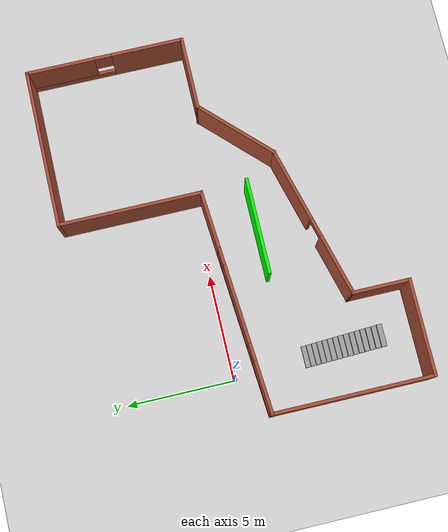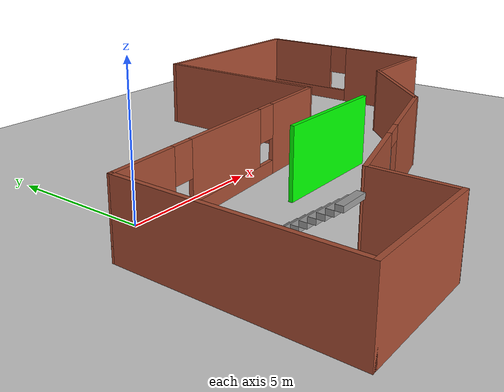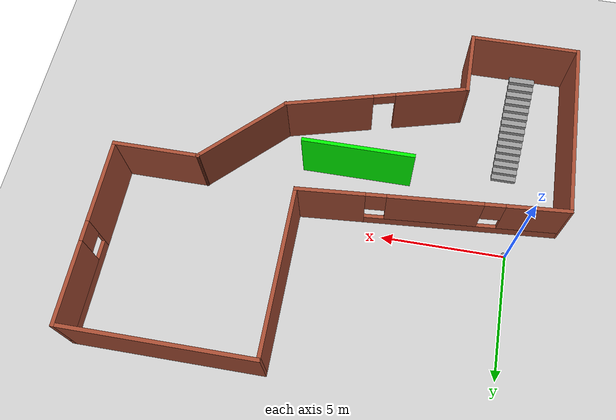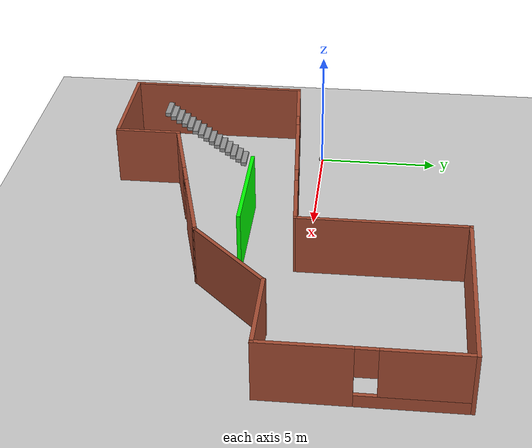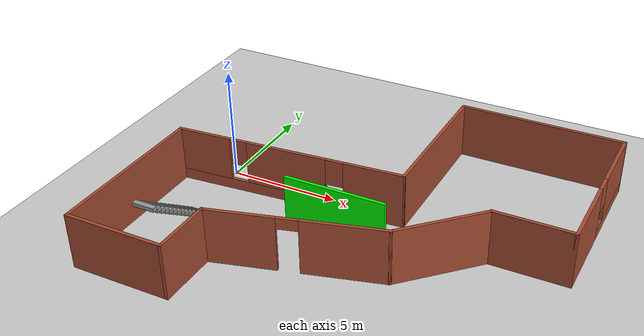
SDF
<sdf version="1.6">
 <world name="default">
  <model name="ground_plane">
   <static>1</static>
   <link name="link">
    <collision name="collision">
     <geometry><plane><normal>0 0 1</normal><size>100 100</size></plane></geometry>
     <surface><friction><ode><mu>100</mu><mu2>50</mu2></ode></friction></surface>
    </collision>
    <visual name="visual">
     <cast_shadows>0</cast_shadows>
     <geometry><plane><normal>0 0 1</normal><size>100 100</size></plane></geometry>
     <material>
      <script><uri>file://media/materials/scripts/gazebo.material</uri><name>Gazebo/Grey</name></script>
     </material>
    </visual>
   </link>
  </model>
  <plugin name="hello" filename="libhello.so"/>
  <light name="sun" type="directional">
   <pose>0 0 10 0 -0 0</pose>
   <diffuse>0.8 0.8 0.8 1</diffuse>
   <specular>0.2 0.2 0.2 1</specular>
   <attenuation>
    <range>1000</range>
    <constant>0.9</constant>
    <linear>0.01</linear>
    <quadratic>0.001</quadratic>
   </attenuation>
   <direction>-0.5 0.1 -0.9</direction>
  </light>
  <model name="ground_plane">
   <static>1</static>
   <link name="link">
    <collision name="collision">
     <geometry><plane><normal>0 0 1</normal><size>100 100</size></plane></geometry>
     <surface><friction><ode><mu>100</mu><mu2>50</mu2></ode></friction></surface>
    </collision>
    <visual name="visual">
     <cast_shadows>0</cast_shadows>
     <geometry><plane><normal>0 0 1</normal><size>100 100</size></plane></geometry>
     <material>
      <script><uri>file://media/materials/scripts/gazebo.material</uri><name>Gazebo/Grey</name></script>
     </material>
    </visual>
   </link>
  </model>
  <gravity>0 0 -9.8</gravity>
  <magnetic_field>6e-06 2.3e-05 -4.2e-05</magnetic_field>
  <atmosphere type="adiabatic"/>
  <physics name="default_physics" default="0" type="ode">
   <max_step_size>0.001</max_step_size>
   <real_time_factor>1</real_time_factor>
   <real_time_update_rate>1000</real_time_update_rate>
  </physics>
  <scene><ambient>0.4 0.4 0.4 1</ambient><background>0.7 0.7 0.7 1</background><shadows>1</shadows></scene>
  <audio><device>default</device></audio>
  <spherical_coordinates>
   <surface_model>EARTH_WGS84</surface_model>
   <latitude_deg>0</latitude_deg>
   <longitude_deg>0</longitude_deg>
   <elevation>0</elevation>
   <heading_deg>0</heading_deg>
  </spherical_coordinates>
  <model name="myworld">
   <pose>6.96513 -1.20949 0 0 -0 0</pose>
   <link name="Stairs_0">
    <visual name="Stairs_0_Visual_0">
     <pose>-6.62308 -2.25309 0.083333 0 -0 0</pose>
     <geometry><box><size>1 0.233333 0.166667</size></box></geometry>
     <material>
      <script><uri>file://media/materials/scripts/gazebo.material</uri><name>Gazebo/Grey</name></script>
      <ambient>1 1 1 1</ambient>
     </material>
     <meta><layer>0</layer></meta>
    </visual>
    <collision name="Stairs_0_Collision_0">
     <geometry><box><size>1 0.233333 0.166667</size></box></geometry>
     <pose>-6.62308 -2.25309 0.083333 0 -0 0</pose>
    </collision>
    <visual name="Stairs_0_Visual_1">
     <pose>-6.62308 -2.48642 0.25 0 -0 0</pose>
     <geometry><box><size>1 0.233333 0.166667</size></box></geometry>
     <material>
      <script><uri>file://media/materials/scripts/gazebo.material</uri><name>Gazebo/Grey</name></script>
      <ambient>1 1 1 1</ambient>
     </material>
     <meta><layer>0</layer></meta>
    </visual>
    <collision name="Stairs_0_Collision_1">
     <geometry><box><size>1 0.233333 0.166667</size></box></geometry>
     <pose>-6.62308 -2.48642 0.25 0 -0 0</pose>
    </collision>
    <visual name="Stairs_0_Visual_2">
     <pose>-6.62308 -2.71975 0.416667 0 -0 0</pose>
     <geometry><box><size>1 0.233333 0.166667</size></box></geometry>
     <material>
      <script><uri>file://media/materials/scripts/gazebo.material</uri><name>Gazebo/Grey</name></script>
      <ambient>1 1 1 1</ambient>
     </material>
     <meta><layer>0</layer></meta>
    </visual>
    <collision name="Stairs_0_Collision_2">
     <geometry><box><size>1 0.233333 0.166667</size></box></geometry>
     <pose>-6.62308 -2.71975 0.416667 0 -0 0</pose>
    </collision>
    <visual name="Stairs_0_Visual_3">
     <pose>-6.62308 -2.95309 0.583333 0 -0 0</pose>
     <geometry><box><size>1 0.233333 0.166667</size></box></geometry>
     <material>
      <script><uri>file://media/materials/scripts/gazebo.material</uri><name>Gazebo/Grey</name></script>
      <ambient>1 1 1 1</ambient>
     </material>
     <meta><layer>0</layer></meta>
    </visual>
    <collision name="Stairs_0_Collision_3">
     <geometry><box><size>1 0.233333 0.166667</size></box></geometry>
     <pose>-6.62308 -2.95309 0.583333 0 -0 0</pose>
    </collision>
    <visual name="Stairs_0_Visual_4">
     <pose>-6.62308 -3.18642 0.75 0 -0 0</pose>
     <geometry><box><size>1 0.233333 0.166667</size></box></geometry>
     <material>
      <script><uri>file://media/materials/scripts/gazebo.material</uri><name>Gazebo/Grey</name></script>
      <ambient>1 1 1 1</ambient>
     </material>
     <meta><layer>0</layer></meta>
    </visual>
    <collision name="Stairs_0_Collision_4">
     <geometry><box><size>1 0.233333 0.166667</size></box></geometry>
     <pose>-6.62308 -3.18642 0.75 0 -0 0</pose>
    </collision>
    <visual name="Stairs_0_Visual_5">
     <pose>-6.62308 -3.41975 0.916667 0 -0 0</pose>
     <geometry><box><size>1 0.233333 0.166667</size></box></geometry>
     <material>
      <script><uri>file://media/materials/scripts/gazebo.material</uri><name>Gazebo/Grey</name></script>
      <ambient>1 1 1 1</ambient>
     </material>
     <meta><layer>0</layer></meta>
    </visual>
    <collision name="Stairs_0_Collision_5">
     <geometry><box><size>1 0.233333 0.166667</size></box></geometry>
     <pose>-6.62308 -3.41975 0.916667 0 -0 0</pose>
    </collision>
    <visual name="Stairs_0_Visual_6">
     <pose>-6.62308 -3.65308 1.08333 0 -0 0</pose>
     <geometry><box><size>1 0.233333 0.166667</size></box></geometry>
     <material>
      <script><uri>file://media/materials/scripts/gazebo.material</uri><name>Gazebo/Grey</name></script>
      <ambient>1 1 1 1</ambient>
     </material>
     <meta><layer>0</layer></meta>
    </visual>
    <collision name="Stairs_0_Collision_6">
     <geometry><box><size>1 0.233333 0.166667</size></box></geometry>
     <pose>-6.62308 -3.65308 1.08333 0 -0 0</pose>
    </collision>
    <visual name="Stairs_0_Visual_7">
     <pose>-6.62308 -3.88642 1.25 0 -0 0</pose>
     <geometry><box><size>1 0.233333 0.166667</size></box></geometry>
     <material>
      <script><uri>file://media/materials/scripts/gazebo.material</uri><name>Gazebo/Grey</name></script>
      <ambient>1 1 1 1</ambient>
     </material>
     <meta><layer>0</layer></meta>
    </visual>
    <collision name="Stairs_0_Collision_7">
     <geometry><box><size>1 0.233333 0.166667</size></box></geometry>
     <pose>-6.62308 -3.88642 1.25 0 -0 0</pose>
    </collision>
    <visual name="Stairs_0_Visual_8">
     <pose>-6.62308 -4.11975 1.41667 0 -0 0</pose>
     <geometry><box><size>1 0.233333 0.166667</size></box></geometry>
     <material>
      <script><uri>file://media/materials/scripts/gazebo.material</uri><name>Gazebo/Grey</name></script>
      <ambient>1 1 1 1</ambient>
     </material>
     <meta><layer>0</layer></meta>
    </visual>
    <collision name="Stairs_0_Collision_8">
     <geometry><box><size>1 0.233333 0.166667</size></box></geometry>
     <pose>-6.62308 -4.11975 1.41667 0 -0 0</pose>
    </collision>
    <visual name="Stairs_0_Visual_9">
     <pose>-6.62308 -4.35309 1.58333 0 -0 0</pose>
     <geometry><box><size>1 0.233333 0.166667</size></box></geometry>
     <material>
      <script><uri>file://media/materials/scripts/gazebo.material</uri><name>Gazebo/Grey</name></script>
      <ambient>1 1 1 1</ambient>
     </material>
     <meta><layer>0</layer></meta>
    </visual>
    <collision name="Stairs_0_Collision_9">
     <geometry><box><size>1 0.233333 0.166667</size></box></geometry>
     <pose>-6.62308 -4.35309 1.58333 0 -0 0</pose>
    </collision>
    <visual name="Stairs_0_Visual_10">
     <pose>-6.62308 -4.58642 1.75 0 -0 0</pose>
     <geometry><box><size>1 0.233333 0.166667</size></box></geometry>
     <material>
      <script><uri>file://media/materials/scripts/gazebo.material</uri><name>Gazebo/Grey</name></script>
      <ambient>1 1 1 1</ambient>
     </material>
     <meta><layer>0</layer></meta>
    </visual>
    <collision name="Stairs_0_Collision_10">
     <geometry><box><size>1 0.233333 0.166667</size></box></geometry>
     <pose>-6.62308 -4.58642 1.75 0 -0 0</pose>
    </collision>
    <visual name="Stairs_0_Visual_11">
     <pose>-6.62308 -4.81975 1.91667 0 -0 0</pose>
     <geometry><box><size>1 0.233333 0.166667</size></box></geometry>
     <material>
      <script><uri>file://media/materials/scripts/gazebo.material</uri><name>Gazebo/Grey</name></script>
      <ambient>1 1 1 1</ambient>
     </material>
     <meta><layer>0</layer></meta>
    </visual>
    <collision name="Stairs_0_Collision_11">
     <geometry><box><size>1 0.233333 0.166667</size></box></geometry>
     <pose>-6.62308 -4.81975 1.91667 0 -0 0</pose>
    </collision>
    <visual name="Stairs_0_Visual_12">
     <pose>-6.62308 -5.05309 2.08333 0 -0 0</pose>
     <geometry><box><size>1 0.233333 0.166667</size></box></geometry>
     <material>
      <script><uri>file://media/materials/scripts/gazebo.material</uri><name>Gazebo/Grey</name></script>
      <ambient>1 1 1 1</ambient>
     </material>
     <meta><layer>0</layer></meta>
    </visual>
    <collision name="Stairs_0_Collision_12">
     <geometry><box><size>1 0.233333 0.166667</size></box></geometry>
     <pose>-6.62308 -5.05309 2.08333 0 -0 0</pose>
    </collision>
    <visual name="Stairs_0_Visual_13">
     <pose>-6.62308 -5.28642 2.25 0 -0 0</pose>
     <geometry><box><size>1 0.233333 0.166667</size></box></geometry>
     <material>
      <script><uri>file://media/materials/scripts/gazebo.material</uri><name>Gazebo/Grey</name></script>
      <ambient>1 1 1 1</ambient>
     </material>
     <meta><layer>0</layer></meta>
    </visual>
    <collision name="Stairs_0_Collision_13">
     <geometry><box><size>1 0.233333 0.166667</size></box></geometry>
     <pose>-6.62308 -5.28642 2.25 0 -0 0</pose>
    </collision>
    <visual name="Stairs_0_Visual_14">
     <pose>-6.62308 -5.51975 2.41667 0 -0 0</pose>
     <geometry><box><size>1 0.233333 0.166667</size></box></geometry>
     <material>
      <script><uri>file://media/materials/scripts/gazebo.material</uri><name>Gazebo/Grey</name></script>
      <ambient>1 1 1 1</ambient>
     </material>
     <meta><layer>0</layer></meta>
    </visual>
    <collision name="Stairs_0_Collision_14">
     <geometry><box><size>1 0.233333 0.166667</size></box></geometry>
     <pose>-6.62308 -5.51975 2.41667 0 -0 0</pose>
    </collision>
   </link>
   <link name="Wall_0">
    <collision name="Wall_0_Collision">
     <geometry><box><size>7.5 0.15 2.5</size></box></geometry>
     <pose>0 0 1.25 0 -0 0</pose>
    </collision>
    <visual name="Wall_0_Visual">
     <pose>0 0 1.25 0 -0 0</pose>
     <geometry><box><size>7.5 0.15 2.5</size></box></geometry>
     <material>
      <script><uri>file://media/materials/scripts/gazebo.material</uri><name>Gazebo/Bricks</name></script>
      <ambient>1 1 1 1</ambient>
     </material>
     <meta><layer>0</layer></meta>
    </visual>
    <pose>-8.84656 -3.70073 0 0 -0 -1.5708</pose>
   </link>
   <link name="Wall_1">
    <collision name="Wall_1_Collision">
     <geometry><box><size>4.5 0.15 2.5</size></box></geometry>
     <pose>0 0 1.25 0 -0 0</pose>
    </collision>
    <visual name="Wall_1_Visual">
     <pose>0 0 1.25 0 -0 0</pose>
     <geometry><box><size>4.5 0.15 2.5</size></box></geometry>
     <material>
      <script><uri>file://media/materials/scripts/gazebo.material</uri><name>Gazebo/Bricks</name></script>
      <ambient>1 1 1 1</ambient>
     </material>
     <meta><layer>0</layer></meta>
    </visual>
    <pose>-6.67156 -7.37573 0 0 -0 0</pose>
   </link>
   <link name="Wall_11">
    <collision name="Wall_11_Collision">
     <geometry><box><size>4.5 0.15 2.5</size></box></geometry>
     <pose>0 0 1.25 0 -0 0</pose>
    </collision>
    <visual name="Wall_11_Visual">
     <pose>0 0 1.25 0 -0 0</pose>
     <geometry><box><size>4.5 0.15 2.5</size></box></geometry>
     <material>
      <script><uri>file://media/materials/scripts/gazebo.material</uri><name>Gazebo/Grey</name></script>
      <ambient>0 1 0 1</ambient>
     </material>
     <meta><layer>0</layer></meta>
    </visual>
    <pose>-0.563342 -1.37413 0 0 -0 3.14159</pose>
   </link>
   <link name="Wall_2">
    <collision name="Wall_2_Collision">
     <geometry><box><size>2.75 0.15 2.5</size></box></geometry>
     <pose>0 0 1.25 0 -0 0</pose>
    </collision>
    <visual name="Wall_2_Visual">
     <pose>0 0 1.25 0 -0 0</pose>
     <geometry><box><size>2.75 0.15 2.5</size></box></geometry>
     <material>
      <script><uri>file://media/materials/scripts/gazebo.material</uri><name>Gazebo/Bricks</name></script>
      <ambient>1 1 1 1</ambient>
     </material>
     <meta><layer>0</layer></meta>
    </visual>
    <pose>-4.49656 -6.07573 0 0 -0 1.5708</pose>
   </link>
   <link name="Wall_3">
    <pose>-0.946784 -3.82457 0 0 -0 0.261799</pose>
    <visual name="Wall_3_Visual_0">
     <pose>-2.24902 0 1.25 0 -0 0</pose>
     <geometry><box><size>3.00196 0.15 2.5</size></box></geometry>
     <material>
      <script><uri>file://media/materials/scripts/gazebo.material</uri><name>Gazebo/Bricks</name></script>
      <ambient>1 1 1 1</ambient>
     </material>
     <meta><layer>0</layer></meta>
    </visual>
    <collision name="Wall_3_Collision_0">
     <geometry><box><size>3.00196 0.15 2.5</size></box></geometry>
     <pose>-2.24902 0 1.25 0 -0 0</pose>
    </collision>
    <visual name="Wall_3_Visual_1">
     <pose>1.95098 0 1.25 0 -0 0</pose>
     <geometry><box><size>3.59804 0.15 2.5</size></box></geometry>
     <material>
      <script><uri>file://media/materials/scripts/gazebo.material</uri><name>Gazebo/Bricks</name></script>
      <ambient>1 1 1 1</ambient>
     </material>
     <meta><layer>0</layer></meta>
    </visual>
    <collision name="Wall_3_Collision_1">
     <geometry><box><size>3.59804 0.15 2.5</size></box></geometry>
     <pose>1.95098 0 1.25 0 -0 0</pose>
    </collision>
    <visual name="Wall_3_Visual_2">
     <pose>-0.298042 0 2.25 0 -0 0</pose>
     <geometry><box><size>0.9 0.15 0.5</size></box></geometry>
     <material>
      <script><uri>file://media/materials/scripts/gazebo.material</uri><name>Gazebo/Bricks</name></script>
      <ambient>1 1 1 1</ambient>
     </material>
     <meta><layer>0</layer></meta>
    </visual>
    <collision name="Wall_3_Collision_2">
     <geometry><box><size>0.9 0.15 0.5</size></box></geometry>
     <pose>-0.298042 0 2.25 0 -0 0</pose>
    </collision>
   </link>
   <link name="Wall_4">
    <collision name="Wall_4_Collision">
     <geometry><box><size>4.25 0.15 2.5</size></box></geometry>
     <pose>0 0 1.25 0 -0 0</pose>
    </collision>
    <visual name="Wall_4_Visual">
     <pose>0 0 1.25 0 -0 0</pose>
     <geometry><box><size>4.25 0.15 2.5</size></box></geometry>
     <material>
      <script><uri>file://media/materials/scripts/gazebo.material</uri><name>Gazebo/Bricks</name></script>
      <ambient>1 1 1 1</ambient>
     </material>
     <meta><layer>0</layer></meta>
    </visual>
    <pose>4.05256 -1.42384 0 0 -0 0.785398</pose>
   </link>
   <link name="Wall_5">
    <collision name="Wall_5_Collision">
     <geometry><box><size>3.5 0.15 2.5</size></box></geometry>
     <pose>0 0 1.25 0 -0 0</pose>
    </collision>
    <visual name="Wall_5_Visual">
     <pose>0 0 1.25 0 -0 0</pose>
     <geometry><box><size>3.5 0.15 2.5</size></box></geometry>
     <material>
      <script><uri>file://media/materials/scripts/gazebo.material</uri><name>Gazebo/Bricks</name></script>
      <ambient>1 1 1 1</ambient>
     </material>
     <meta><layer>0</layer></meta>
    </visual>
    <pose>7.17713 0.025729 0 0 -0 0</pose>
   </link>
   <link name="Wall_6">
    <pose>8.85213 3.70073 0 0 -0 1.5708</pose>
    <visual name="Wall_6_Visual_0">
     <pose>-2.03035 0 1.25 0 -0 0</pose>
     <geometry><box><size>3.4393 0.15 2.5</size></box></geometry>
     <material>
      <script><uri>file://media/materials/scripts/gazebo.material</uri><name>Gazebo/Bricks</name></script>
      <ambient>1 1 1 1</ambient>
     </material>
     <meta><layer>0</layer></meta>
    </visual>
    <collision name="Wall_6_Collision_0">
     <geometry><box><size>3.4393 0.15 2.5</size></box></geometry>
     <pose>-2.03035 0 1.25 0 -0 0</pose>
    </collision>
    <visual name="Wall_6_Visual_1">
     <pose>1.71965 0 0.25 0 -0 0</pose>
     <geometry><box><size>4.0607 0.15 0.5</size></box></geometry>
     <material>
      <script><uri>file://media/materials/scripts/gazebo.material</uri><name>Gazebo/Bricks</name></script>
      <ambient>1 1 1 1</ambient>
     </material>
     <meta><layer>0</layer></meta>
    </visual>
    <collision name="Wall_6_Collision_1">
     <geometry><box><size>4.0607 0.15 0.5</size></box></geometry>
     <pose>1.71965 0 0.25 0 -0 0</pose>
    </collision>
    <visual name="Wall_6_Visual_2">
     <pose>2.11965 0 1.5 0 -0 0</pose>
     <geometry><box><size>3.2607 0.15 2</size></box></geometry>
     <material>
      <script><uri>file://media/materials/scripts/gazebo.material</uri><name>Gazebo/Bricks</name></script>
      <ambient>1 1 1 1</ambient>
     </material>
     <meta><layer>0</layer></meta>
    </visual>
    <collision name="Wall_6_Collision_2">
     <geometry><box><size>3.2607 0.15 2</size></box></geometry>
     <pose>2.11965 0 1.5 0 -0 0</pose>
    </collision>
    <visual name="Wall_6_Visual_3">
     <pose>0.089298 0 1.9 0 -0 0</pose>
     <geometry><box><size>0.8 0.15 1.2</size></box></geometry>
     <material>
      <script><uri>file://media/materials/scripts/gazebo.material</uri><name>Gazebo/Bricks</name></script>
      <ambient>1 1 1 1</ambient>
     </material>
     <meta><layer>0</layer></meta>
    </visual>
    <collision name="Wall_6_Collision_3">
     <geometry><box><size>0.8 0.15 1.2</size></box></geometry>
     <pose>0.089298 0 1.9 0 -0 0</pose>
    </collision>
   </link>
   <link name="Wall_7">
    <collision name="Wall_7_Collision">
     <geometry><box><size>7.5 0.15 2.5</size></box></geometry>
     <pose>0 0 1.25 0 -0 0</pose>
    </collision>
    <visual name="Wall_7_Visual">
     <pose>0 0 1.25 0 -0 0</pose>
     <geometry><box><size>7.5 0.15 2.5</size></box></geometry>
     <material>
      <script><uri>file://media/materials/scripts/gazebo.material</uri><name>Gazebo/Bricks</name></script>
      <ambient>1 1 1 1</ambient>
     </material>
     <meta><layer>0</layer></meta>
    </visual>
    <pose>5.17713 7.37573 0 0 -0 3.14159</pose>
   </link>
   <link name="Wall_8">
    <collision name="Wall_8_Collision">
     <geometry><box><size>6.75 0.15 2.5</size></box></geometry>
     <pose>0 0 1.25 0 -0 0</pose>
    </collision>
    <visual name="Wall_8_Visual">
     <pose>0 0 1.25 0 -0 0</pose>
     <geometry><box><size>6.75 0.15 2.5</size></box></geometry>
     <material>
      <script><uri>file://media/materials/scripts/gazebo.material</uri><name>Gazebo/Bricks</name></script>
      <ambient>1 1 1 1</ambient>
     </material>
     <meta><layer>0</layer></meta>
    </visual>
    <pose>1.50213 4.07573 0 0 -0 -1.5708</pose>
   </link>
   <link name="Wall_9">
    <pose>-3.67222 0.375 0 0 -0 -3.0643</pose>
    <visual name="Wall_9_Visual_0">
     <pose>-3.89549 0 1.25 0 -0 0</pose>
     <geometry><box><size>2.7387 0.15 2.5</size></box></geometry>
     <material>
      <script><uri>file://media/materials/scripts/gazebo.material</uri><name>Gazebo/Bricks</name></script>
      <ambient>1 1 1 1</ambient>
     </material>
     <meta><layer>0</layer></meta>
    </visual>
    <collision name="Wall_9_Collision_0">
     <geometry><box><size>2.7387 0.15 2.5</size></box></geometry>
     <pose>-3.89549 0 1.25 0 -0 0</pose>
    </collision>
    <visual name="Wall_9_Visual_1">
     <pose>1.36935 0 0.25 0 -0 0</pose>
     <geometry><box><size>7.79099 0.15 0.5</size></box></geometry>
     <material>
      <script><uri>file://media/materials/scripts/gazebo.material</uri><name>Gazebo/Bricks</name></script>
      <ambient>1 1 1 1</ambient>
     </material>
     <meta><layer>0</layer></meta>
    </visual>
    <collision name="Wall_9_Collision_1">
     <geometry><box><size>7.79099 0.15 0.5</size></box></geometry>
     <pose>1.36935 0 0.25 0 -0 0</pose>
    </collision>
    <visual name="Wall_9_Visual_2">
     <pose>0.114705 0 1.5 0 -0 0</pose>
     <geometry><box><size>3.6817 0.15 2</size></box></geometry>
     <material>
      <script><uri>file://media/materials/scripts/gazebo.material</uri><name>Gazebo/Bricks</name></script>
      <ambient>1 1 1 1</ambient>
     </material>
     <meta><layer>0</layer></meta>
    </visual>
    <collision name="Wall_9_Collision_2">
     <geometry><box><size>3.6817 0.15 2</size></box></geometry>
     <pose>0.114705 0 1.5 0 -0 0</pose>
    </collision>
    <visual name="Wall_9_Visual_3">
     <pose>4.0102 0 1.5 0 -0 0</pose>
     <geometry><box><size>2.50929 0.15 2</size></box></geometry>
     <material>
      <script><uri>file://media/materials/scripts/gazebo.material</uri><name>Gazebo/Bricks</name></script>
      <ambient>1 1 1 1</ambient>
     </material>
     <meta><layer>0</layer></meta>
    </visual>
    <collision name="Wall_9_Collision_3">
     <geometry><box><size>2.50929 0.15 2</size></box></geometry>
     <pose>4.0102 0 1.5 0 -0 0</pose>
    </collision>
    <visual name="Wall_9_Visual_4">
     <pose>-2.12615 0 1.9 0 -0 0</pose>
     <geometry><box><size>0.8 0.15 1.2</size></box></geometry>
     <material>
      <script><uri>file://media/materials/scripts/gazebo.material</uri><name>Gazebo/Bricks</name></script>
      <ambient>1 1 1 1</ambient>
     </material>
     <meta><layer>0</layer></meta>
    </visual>
    <collision name="Wall_9_Collision_4">
     <geometry><box><size>0.8 0.15 1.2</size></box></geometry>
     <pose>-2.12615 0 1.9 0 -0 0</pose>
    </collision>
    <visual name="Wall_9_Visual_5">
     <pose>2.35556 0 1.9 0 -0 0</pose>
     <geometry><box><size>0.8 0.15 1.2</size></box></geometry>
     <material>
      <script><uri>file://media/materials/scripts/gazebo.material</uri><name>Gazebo/Bricks</name></script>
      <ambient>1 1 1 1</ambient>
     </material>
     <meta><layer>0</layer></meta>
    </visual>
    <collision name="Wall_9_Collision_5">
     <geometry><box><size>0.8 0.15 1.2</size></box></geometry>
     <pose>2.35556 0 1.9 0 -0 0</pose>
    </collision>
   </link>
   <static>1</static>
  </model>
  <model name="my_ball">
   <pose>0.081293 -0.040854 0.099991 0 -0 0</pose>
   <link name="link_0">
    <inertial>
     <mass>1</mass>
     <inertia><ixx>0.1</ixx><ixy>0</ixy><ixz>0</ixz><iyy>0.1</iyy><iyz>0</iyz><izz>0.1</izz></inertia>
    </inertial>
    <visual name="visual">
     <geometry><sphere><radius>0.1</radius></sphere></geometry>
     <material>
      <lighting>1</lighting>
      <script><uri>file://media/materials/scripts/gazebo.material</uri><name>Gazebo/Grey</name></script>
      <shader type="vertex"><normal_map>__default__</normal_map></shader>
      <ambient>1 1 1 1</ambient>
      <diffuse>1 1 1 1</diffuse>
      <specular>1 1 1 1</specular>
      <emissive>1 1 1 1</emissive>
     </material>
    </visual>
    <collision name="collision">
     <geometry><sphere><radius>0.1</radius></sphere></geometry>
     <surface>
      <friction>
       <ode><mu>1</mu><mu2>1</mu2><fdir1>0 0 0</fdir1><slip1>0</slip1><slip2>0</slip2></ode>
       <torsional>
        <coefficient>1</coefficient>
        <patch_radius>0</patch_radius>
        <surface_radius>0</surface_radius>
        <use_patch_radius>1</use_patch_radius>
        <ode><slip>0</slip></ode>
       </torsional>
      </friction>
      <bounce><restitution_coefficient>0</restitution_coefficient><threshold>1e+06</threshold></bounce>
      <contact>
       <collide_without_contact>0</collide_without_contact>
       <collide_without_contact_bitmask>1</collide_without_contact_bitmask>
       <collide_bitmask>1</collide_bitmask>
       <ode>
        <soft_cfm>0</soft_cfm>
        <soft_erp>0.2</soft_erp>
        <kp>1e+13</kp>
        <kd>1</kd>
        <max_vel>0.01</max_vel>
        <min_depth>0</min_depth>
       </ode>
       <bullet>
        <split_impulse>1</split_impulse>
        <split_impulse_penetration_threshold>-0.01</split_impulse_penetration_threshold>
        <soft_cfm>0</soft_cfm>
        <soft_erp>0.2</soft_erp>
        <kp>1e+13</kp>
        <kd>1</kd>
       </bullet>
      </contact>
     </surface>
    </collision>
   </link>
   <static>0</static>
  </model>
 </world>
</sdf>
